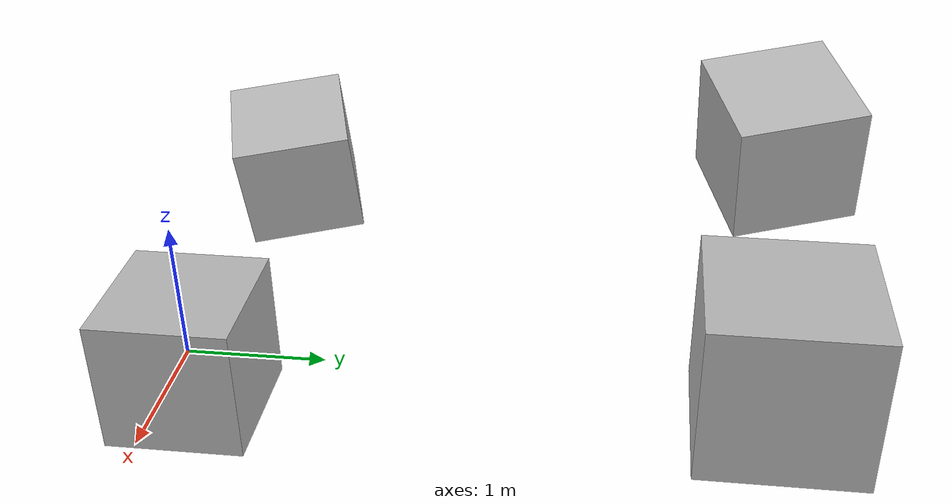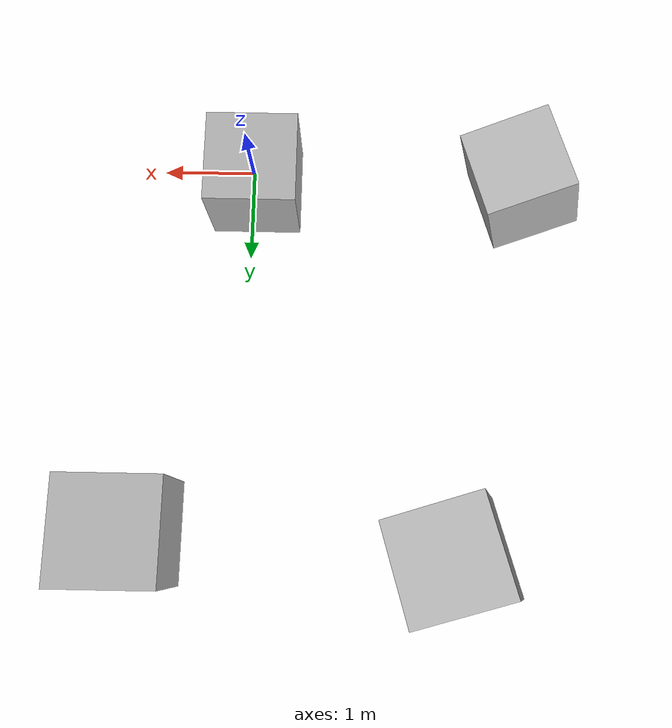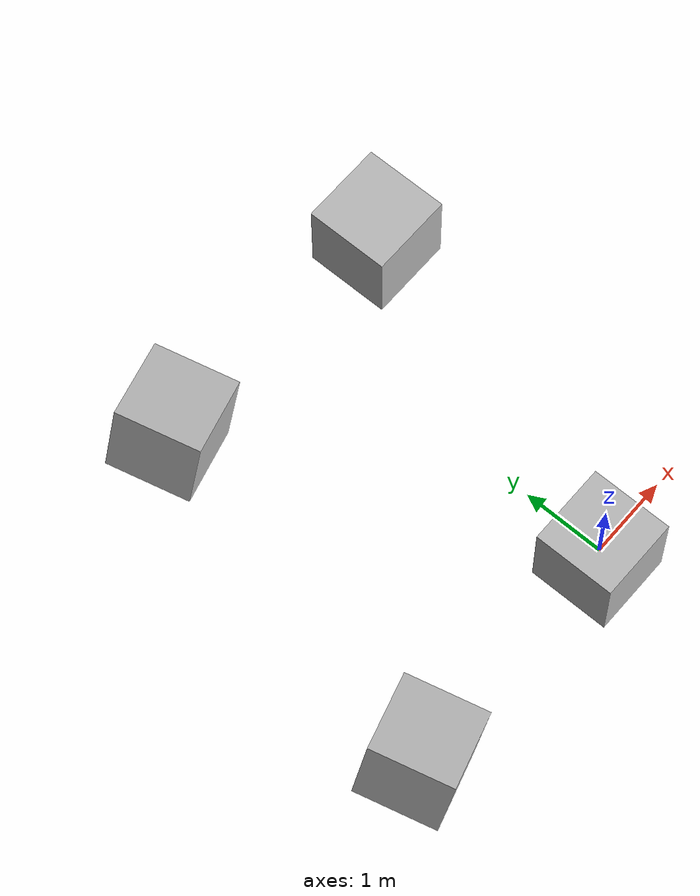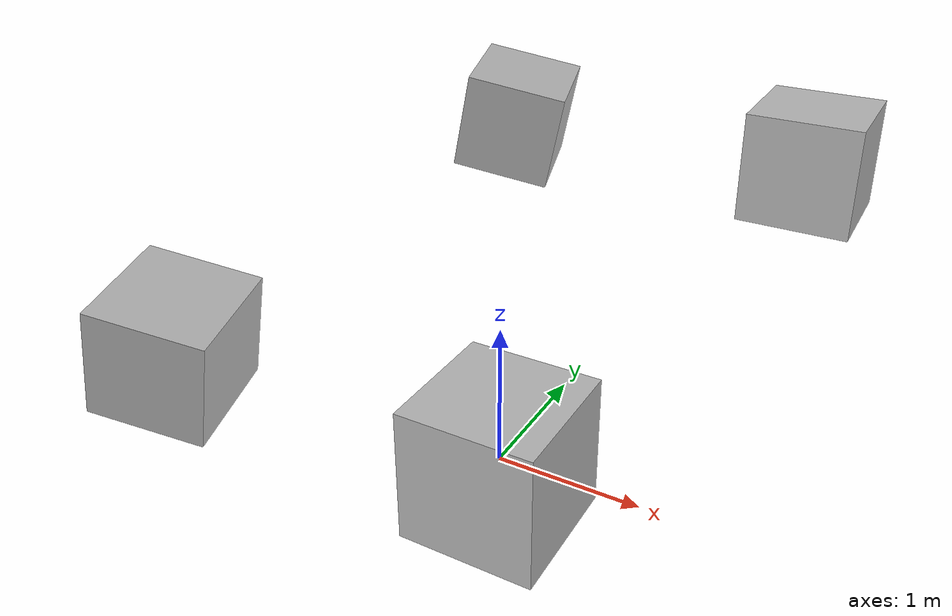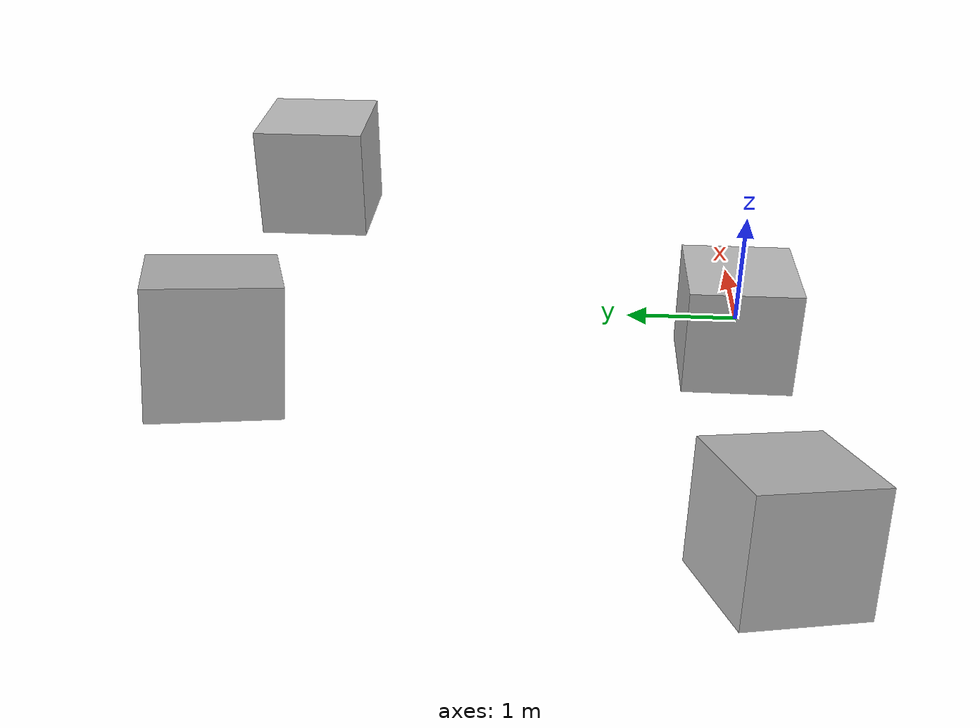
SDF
<?xml version="1.0" ?>
<sdf version="1.6">
  <world name="center_of_volume">
    <plugin
      filename="gz-sim-apply-link-wrench-system"
      name="gz::sim::systems::ApplyLinkWrench">
    </plugin>

    <physics name="fast" type="ignored">
      <real_time_factor>0</real_time_factor>
    </physics>
    <plugin
      filename="gz-sim-physics-system"
      name="gz::sim::systems::Physics">
    </plugin>
    <plugin
      filename="gz-sim-buoyancy-system"
      name="gz::sim::systems::Buoyancy">
       <graded_buoyancy>
	    <default_density>1000</default_density>
      <density_change>
        <above_depth>500</above_depth>
        <density>1</density>
      </density_change>
      </graded_buoyancy>
    </plugin>

     <plugin
      filename="gz-sim-user-commands-system"
      name="gz::sim::systems::UserCommands">
    </plugin>
    <plugin
      filename="gz-sim-scene-broadcaster-system"
      name="gz::sim::systems::SceneBroadcaster">
    </plugin>
    <model name='no_offset'>
      <pose>0 0 0 0 0 0</pose>
      <link name='link'>
        <pose>0 0 0 0 0 0</pose>
        <inertial>
          <pose>0 0 0 0 0 0</pose>
          <inertia>
            <ixx>166.66</ixx>
            <ixy>0</ixy>
            <ixz>0</ixz>
            <iyy>166.66</iyy>
            <iyz>0</iyz>
            <izz>166.66</izz>
          </inertia>
          <mass>1000.0</mass>
        </inertial>
        <visual name='visual'>
          <pose>0 0 0 0 0 0</pose>
          <geometry>
            <box>
              <size>1.0 1.0 1.0</size>
            </box>
          </geometry>
        </visual>
        <collision name='collision'>
          <pose>0 0 0 0 0 0</pose>
          <geometry>
            <box>
              <size>1.0 1.0 1.0</size>
            </box>
          </geometry>
        </collision>
      </link>
    </model>

    <model name='no_offset_rotated'>
      <pose>-3 0 0 0.1 0.2 0.3</pose>
      <link name='link'>
        <pose>0 0 0 0 0 0</pose>
        <inertial>
          <pose>0 0 0 0 0 0</pose>
          <inertia>
            <ixx>166.66</ixx>
            <ixy>0</ixy>
            <ixz>0</ixz>
            <iyy>166.66</iyy>
            <iyz>0</iyz>
            <izz>166.66</izz>
          </inertia>
          <mass>1000.0</mass>
        </inertial>
        <visual name='visual'>
          <pose>0 0 0 0 0 0</pose>
          <geometry>
            <box>
              <size>1.0 1.0 1.0</size>
            </box>
          </geometry>
        </visual>
        <collision name='collision'>
          <pose>0 0 0 0 0 0</pose>
          <geometry>
            <box>
              <size>1.0 1.0 1.0</size>
            </box>
          </geometry>
        </collision>
      </link>
    </model>

    <model name='com_cov_offset'>
      <pose>0 3 0 0 0 0</pose>
      <link name='link'>
        <pose>0 0 0 0 0 0</pose>
        <inertial>
          <pose>1 1 1 0 0 0</pose>
          <inertia>
            <ixx>166.66</ixx>
            <ixy>0</ixy>
            <ixz>0</ixz>
            <iyy>166.66</iyy>
            <iyz>0</iyz>
            <izz>166.66</izz>
          </inertia>
          <mass>1000.0</mass>
        </inertial>
        <visual name='visual'>
          <pose>1 1 1 0 0 0</pose>
          <geometry>
            <box>
              <size>1.0 1.0 1.0</size>
            </box>
          </geometry>
        </visual>
        <collision name='collision'>
          <pose>1 1 1 0 0 0</pose>
          <geometry>
            <box>
              <size>1.0 1.0 1.0</size>
            </box>
          </geometry>
        </collision>
      </link>
    </model>

    <model name='com_cov_offset_rotated'>
      <pose>-3 3 0 0.1 0.2 0.3</pose>
      <link name='link'>
        <pose>0 0 0 0 0 0</pose>
        <inertial>
          <pose>1 1 1 0 0 0</pose>
          <inertia>
            <ixx>166.66</ixx>
            <ixy>0</ixy>
            <ixz>0</ixz>
            <iyy>166.66</iyy>
            <iyz>0</iyz>
            <izz>166.66</izz>
          </inertia>
          <mass>1000.0</mass>
        </inertial>
        <visual name='visual'>
          <pose>1 1 1 0 0 0</pose>
          <geometry>
            <box>
              <size>1.0 1.0 1.0</size>
            </box>
          </geometry>
        </visual>
        <collision name='collision'>
          <pose>1 1 1 0 0 0</pose>
          <geometry>
            <box>
              <size>1.0 1.0 1.0</size>
            </box>
          </geometry>
        </collision>
      </link>
    </model>

  </world>
</sdf>
